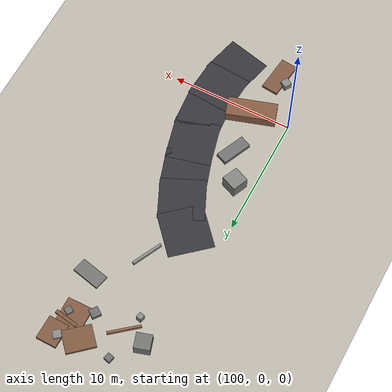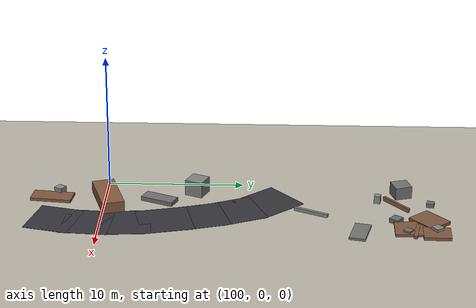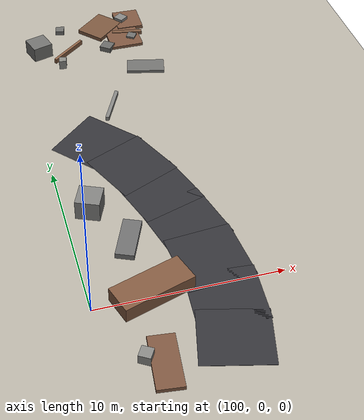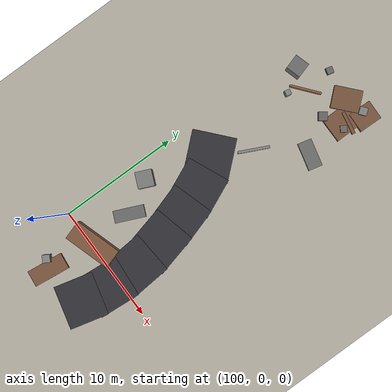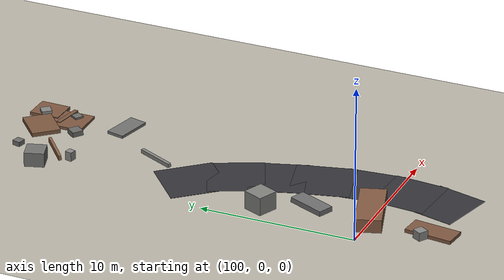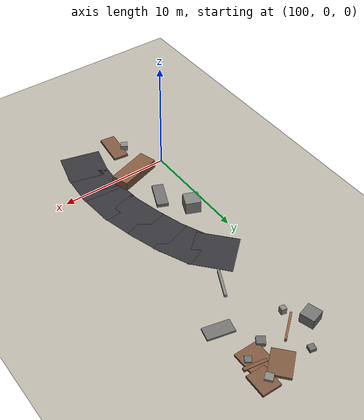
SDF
<sdf version="1.6">
 <world name="navitas_arena">
  <model name="ground_plane">
   <static>true</static>
   <link name="link">
    <collision name="collision">
     <geometry><plane><normal>0 0 1</normal><size>400 400</size></plane></geometry>
     <surface><friction><ode><mu>0.720</mu><mu2>0.720</mu2></ode></friction></surface>
    </collision>
    <visual name="visual">
     <cast_shadows>false</cast_shadows>
     <geometry><plane><normal>0 0 1</normal><size>400 400</size></plane></geometry>
     <material><ambient>0.720 0.700 0.650 1</ambient><diffuse>0.720 0.700 0.650 1</diffuse></material>
    </visual>
   </link>
  </model>
  <model name="road_zor_3_8">
   <static>true</static>
   <pose>106.227 -3.333 0.040 0 0 1.326</pose>
   <link name="link">
    <collision name="col"><geometry><box><size>3.305 3.680 0.020</size></box></geometry></collision>
    <visual name="vis">
     <geometry><box><size>3.305 3.680 0.020</size></box></geometry>
     <material><ambient>0.20 0.20 0.22 1</ambient><diffuse>0.20 0.20 0.22 1</diffuse></material>
    </visual>
   </link>
  </model>
  <model name="road_zor_3_9">
   <static>true</static>
   <pose>106.615 -0.883 0.040 0 0 1.495</pose>
   <link name="link">
    <collision name="col"><geometry><box><size>3.474 3.680 0.020</size></box></geometry></collision>
    <visual name="vis">
     <geometry><box><size>3.474 3.680 0.020</size></box></geometry>
     <material><ambient>0.20 0.20 0.22 1</ambient><diffuse>0.20 0.20 0.22 1</diffuse></material>
    </visual>
   </link>
  </model>
  <model name="road_zor_3_10">
   <static>true</static>
   <pose>106.594 1.800 0.040 0 0 1.655</pose>
   <link name="link">
    <collision name="col"><geometry><box><size>3.710 3.680 0.020</size></box></geometry></collision>
    <visual name="vis">
     <geometry><box><size>3.710 3.680 0.020</size></box></geometry>
     <material><ambient>0.20 0.20 0.22 1</ambient><diffuse>0.20 0.20 0.22 1</diffuse></material>
    </visual>
   </link>
  </model>
  <model name="road_zor_3_11">
   <static>true</static>
   <pose>106.128 4.600 0.040 0 0 1.814</pose>
   <link name="link">
    <collision name="col"><geometry><box><size>3.785 3.680 0.020</size></box></geometry></collision>
    <visual name="vis">
     <geometry><box><size>3.785 3.680 0.020</size></box></geometry>
     <material><ambient>0.20 0.20 0.22 1</ambient><diffuse>0.20 0.20 0.22 1</diffuse></material>
    </visual>
   </link>
  </model>
  <model name="road_zor_3_12">
   <static>true</static>
   <pose>105.398 7.213 0.040 0 0 1.877</pose>
   <link name="link">
    <collision name="col"><geometry><box><size>3.444 3.680 0.020</size></box></geometry></collision>
    <visual name="vis">
     <geometry><box><size>3.444 3.680 0.020</size></box></geometry>
     <material><ambient>0.20 0.20 0.22 1</ambient><diffuse>0.20 0.20 0.22 1</diffuse></material>
    </visual>
   </link>
  </model>
  <model name="road_zor_3_13">
   <static>true</static>
   <pose>104.473 9.639 0.040 0 0 1.991</pose>
   <link name="link">
    <collision name="col"><geometry><box><size>3.558 3.680 0.020</size></box></geometry></collision>
    <visual name="vis">
     <geometry><box><size>3.558 3.680 0.020</size></box></geometry>
     <material><ambient>0.20 0.20 0.22 1</ambient><diffuse>0.20 0.20 0.22 1</diffuse></material>
    </visual>
   </link>
  </model>
  <model name="road_zor_3_14">
   <static>true</static>
   <pose>102.978 11.926 0.040 0 0 2.296</pose>
   <link name="link">
    <collision name="col"><geometry><box><size>3.770 3.680 0.020</size></box></geometry></collision>
    <visual name="vis">
     <geometry><box><size>3.770 3.680 0.020</size></box></geometry>
     <material><ambient>0.20 0.20 0.22 1</ambient><diffuse>0.20 0.20 0.22 1</diffuse></material>
    </visual>
   </link>
  </model>
  <model name="deb_zor_5">
   <static>true</static>
   <pose>107.618 18.501 0.091 0 0 2.913</pose>
   <link name="link">
    <collision name="col"><geometry><box><size>2.337 1.175 0.182</size></box></geometry></collision>
    <visual name="vis">
     <geometry><box><size>2.337 1.175 0.182</size></box></geometry>
     <material><ambient>0.44 0.44 0.43 1</ambient><diffuse>0.44 0.44 0.43 1</diffuse></material>
    </visual>
   </link>
  </model>
  <model name="deb_zor_16">
   <static>true</static>
   <pose>101.426 6.684 0.590 0 0 2.733</pose>
   <link name="link">
    <collision name="col"><geometry><box><size>1.346 1.346 1.181</size></box></geometry></collision>
    <visual name="vis">
     <geometry><box><size>1.346 1.346 1.181</size></box></geometry>
     <material><ambient>0.50 0.50 0.49 1</ambient><diffuse>0.50 0.50 0.49 1</diffuse></material>
    </visual>
   </link>
  </model>
  <model name="deb_zor_23">
   <static>true</static>
   <pose>102.654 -3.940 0.114 0 0 1.456</pose>
   <link name="link">
    <collision name="col"><geometry><box><size>3.038 1.373 0.227</size></box></geometry></collision>
    <visual name="vis">
     <geometry><box><size>3.038 1.373 0.227</size></box></geometry>
     <material><ambient>0.49 0.34 0.25 1</ambient><diffuse>0.49 0.34 0.25 1</diffuse></material>
    </visual>
   </link>
  </model>
  <model name="deb_zor_35">
   <static>true</static>
   <pose>101.361 21.708 0.464 0 0 0.294</pose>
   <link name="link">
    <collision name="col"><geometry><box><size>1.260 1.260 0.928</size></box></geometry></collision>
    <visual name="vis">
     <geometry><box><size>1.260 1.260 0.928</size></box></geometry>
     <material><ambient>0.44 0.44 0.43 1</ambient><diffuse>0.44 0.44 0.43 1</diffuse></material>
    </visual>
   </link>
  </model>
  <model name="deb_zor_51">
   <static>true</static>
   <pose>107.544 21.882 0.153 0 0 2.569</pose>
   <link name="link">
    <collision name="col"><geometry><box><size>0.552 0.552 0.307</size></box></geometry></collision>
    <visual name="vis">
     <geometry><box><size>0.552 0.552 0.307</size></box></geometry>
     <material><ambient>0.43 0.43 0.42 1</ambient><diffuse>0.43 0.43 0.42 1</diffuse></material>
    </visual>
   </link>
  </model>
  <model name="deb_zor_61">
   <static>true</static>
   <pose>102.879 3.977 0.164 0 0 1.159</pose>
   <link name="link">
    <collision name="col"><geometry><box><size>2.530 1.012 0.329</size></box></geometry></collision>
    <visual name="vis">
     <geometry><box><size>2.530 1.012 0.329</size></box></geometry>
     <material><ambient>0.43 0.43 0.43 1</ambient><diffuse>0.43 0.43 0.43 1</diffuse></material>
    </visual>
   </link>
  </model>
  <model name="deb_zor_68">
   <static>true</static>
   <pose>103.180 21.293 0.151 0 0 0.696</pose>
   <link name="link">
    <collision name="col"><geometry><box><size>2.623 0.175 0.302</size></box></geometry></collision>
    <visual name="vis">
     <geometry><box><size>2.623 0.175 0.302</size></box></geometry>
     <material><ambient>0.55 0.38 0.27 1</ambient><diffuse>0.55 0.38 0.27 1</diffuse></material>
    </visual>
   </link>
  </model>
  <model name="deb_zor_99">
   <static>true</static>
   <pose>102.563 19.936 0.294 0 0 2.924</pose>
   <link name="link">
    <collision name="col"><geometry><box><size>0.451 0.451 0.588</size></box></geometry></collision>
    <visual name="vis">
     <geometry><box><size>0.451 0.451 0.588</size></box></geometry>
     <material><ambient>0.53 0.53 0.51 1</ambient><diffuse>0.53 0.53 0.51 1</diffuse></material>
    </visual>
   </link>
  </model>
  <model name="deb_zor_123">
   <static>true</static>
   <pose>103.094 23.760 0.154 0 0 1.330</pose>
   <link name="link">
    <collision name="col"><geometry><box><size>0.540 0.540 0.307</size></box></geometry></collision>
    <visual name="vis">
     <geometry><box><size>0.540 0.540 0.307</size></box></geometry>
     <material><ambient>0.42 0.42 0.41 1</ambient><diffuse>0.42 0.42 0.41 1</diffuse></material>
    </visual>
   </link>
  </model>
  <model name="deb_zor_127">
   <static>true</static>
   <pose>101.854 -3.462 0.278 0 0 2.591</pose>
   <link name="link">
    <collision name="col"><geometry><box><size>0.632 0.632 0.556</size></box></geometry></collision>
    <visual name="vis">
     <geometry><box><size>0.632 0.632 0.556</size></box></geometry>
     <material><ambient>0.53 0.53 0.52 1</ambient><diffuse>0.53 0.53 0.52 1</diffuse></material>
    </visual>
   </link>
  </model>
  <model name="deb_zor_141">
   <static>true</static>
   <pose>105.733 21.133 0.164 0 0 2.501</pose>
   <link name="link">
    <collision name="col"><geometry><box><size>0.730 0.730 0.329</size></box></geometry></collision>
    <visual name="vis">
     <geometry><box><size>0.730 0.730 0.329</size></box></geometry>
     <material><ambient>0.41 0.41 0.40 1</ambient><diffuse>0.41 0.41 0.40 1</diffuse></material>
    </visual>
   </link>
  </model>
  <model name="deb_zor_163">
   <static>true</static>
   <pose>105.768 23.502 0.124 0 0 0.730</pose>
   <link name="link">
    <collision name="col"><geometry><box><size>2.340 1.839 0.249</size></box></geometry></collision>
    <visual name="vis">
     <geometry><box><size>2.340 1.839 0.249</size></box></geometry>
     <material><ambient>0.48 0.34 0.24 1</ambient><diffuse>0.48 0.34 0.24 1</diffuse></material>
    </visual>
   </link>
  </model>
  <model name="deb_zor_168">
   <static>true</static>
   <pose>107.319 23.955 0.219 0 0 2.238</pose>
   <link name="link">
    <collision name="col"><geometry><box><size>0.645 0.645 0.439</size></box></geometry></collision>
    <visual name="vis">
     <geometry><box><size>0.645 0.645 0.439</size></box></geometry>
     <material><ambient>0.52 0.52 0.51 1</ambient><diffuse>0.52 0.52 0.51 1</diffuse></material>
    </visual>
   </link>
  </model>
  <model name="deb_zor_174">
   <static>true</static>
   <pose>107.386 22.502 0.111 0 0 2.968</pose>
   <link name="link">
    <collision name="col"><geometry><box><size>1.942 0.278 0.223</size></box></geometry></collision>
    <visual name="vis">
     <geometry><box><size>1.942 0.278 0.223</size></box></geometry>
     <material><ambient>0.48 0.34 0.24 1</ambient><diffuse>0.48 0.34 0.24 1</diffuse></material>
    </visual>
   </link>
  </model>
  <model name="deb_zor_175">
   <static>true</static>
   <pose>107.752 23.886 0.116 0 0 1.550</pose>
   <link name="link">
    <collision name="col"><geometry><box><size>1.952 1.670 0.232</size></box></geometry></collision>
    <visual name="vis">
     <geometry><box><size>1.952 1.670 0.232</size></box></geometry>
     <material><ambient>0.49 0.34 0.25 1</ambient><diffuse>0.49 0.34 0.25 1</diffuse></material>
    </visual>
   </link>
  </model>
  <model name="deb_zor_177">
   <static>true</static>
   <pose>104.618 15.087 0.127 0 0 1.122</pose>
   <link name="link">
    <collision name="col"><geometry><box><size>2.610 0.219 0.254</size></box></geometry></collision>
    <visual name="vis">
     <geometry><box><size>2.610 0.219 0.254</size></box></geometry>
     <material><ambient>0.52 0.52 0.51 1</ambient><diffuse>0.52 0.52 0.51 1</diffuse></material>
    </visual>
   </link>
  </model>
  <model name="deb_zor_181">
   <static>true</static>
   <pose>107.036 22.161 0.092 0 0 1.577</pose>
   <link name="link">
    <collision name="col"><geometry><box><size>2.442 2.080 0.184</size></box></geometry></collision>
    <visual name="vis">
     <geometry><box><size>2.442 2.080 0.184</size></box></geometry>
     <material><ambient>0.49 0.34 0.25 1</ambient><diffuse>0.49 0.34 0.25 1</diffuse></material>
    </visual>
   </link>
  </model>
  <model name="chic_zor_2">
   <static>true</static>
   <pose>103.138 0.240 0.425 0 0 0.306</pose>
   <link name="link">
    <collision name="col"><geometry><box><size>4.000 1.633 0.850</size></box></geometry></collision>
    <visual name="vis">
     <geometry><box><size>4.000 1.633 0.850</size></box></geometry>
     <material><ambient>0.51 0.35 0.25 1</ambient><diffuse>0.51 0.35 0.25 1</diffuse></material>
    </visual>
   </link>
  </model>
 </world>
</sdf>
